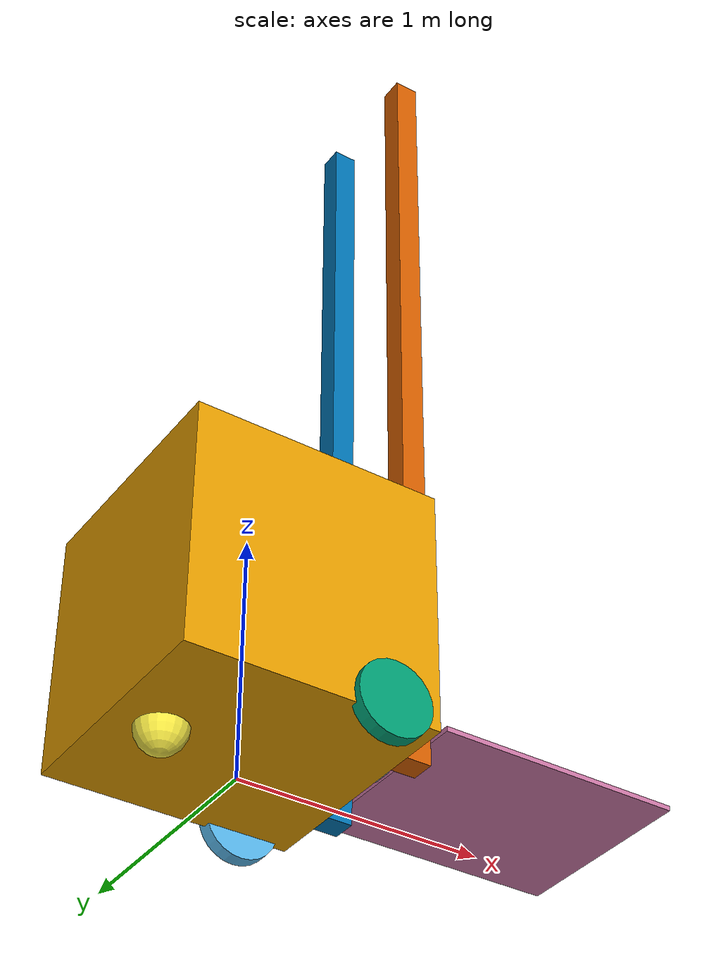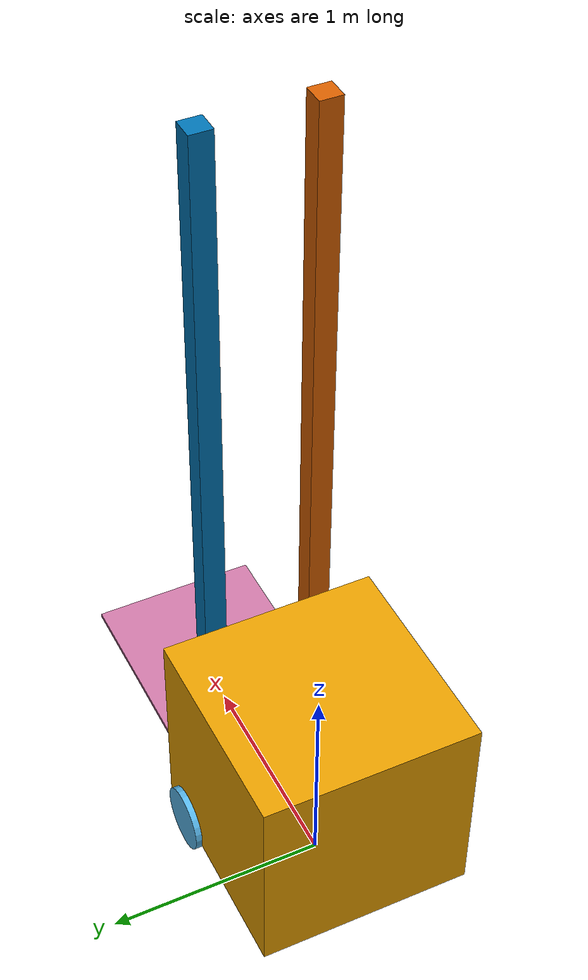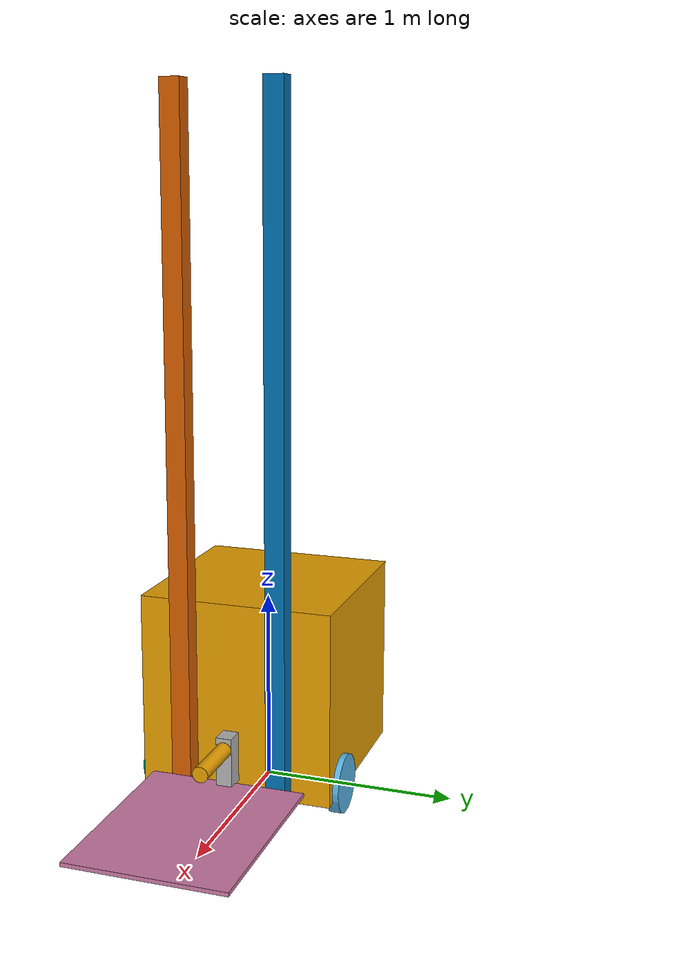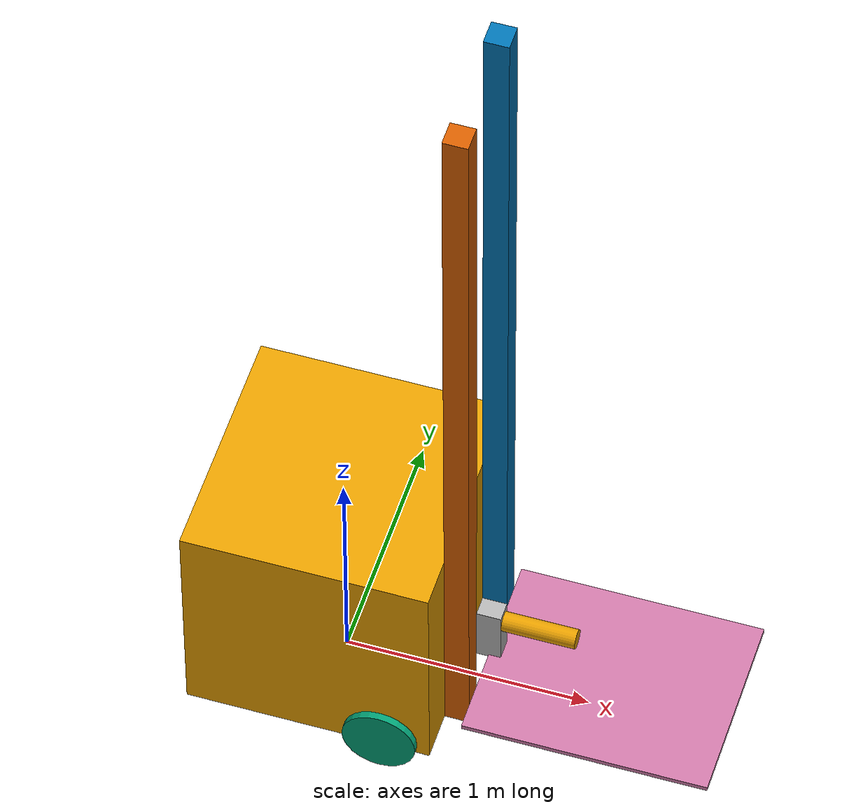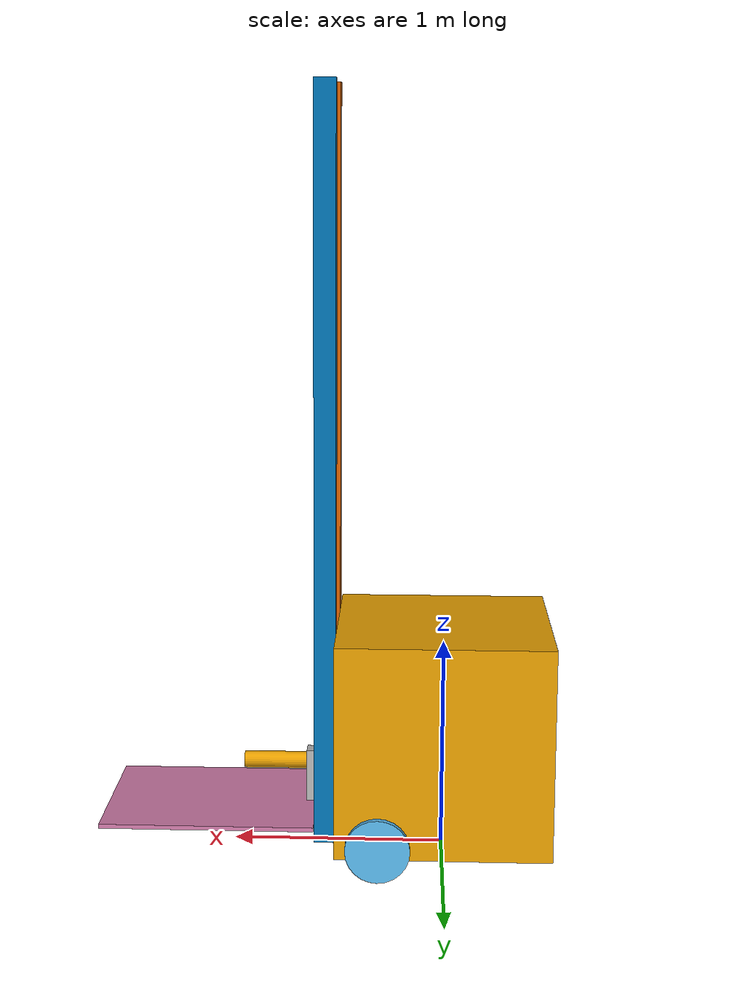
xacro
<?xml version="1.0"?>

<robot name="forklift"  xmlns:xacro="http://www.ros.org/wiki/xacro">
<xacro:include filename="$(find my_urdf)/urdf/joints_links.xacro"/>

    <m_box name="chassis" size="1 1 1" origin_rpy="0.0 0.0 0.0" origin_xyz="0.0 0.0 0.6"
        mass="30"
        ixx="5" ixy="0" ixz="0"
        iyy="5" iyz="0"
        izz="5"/>

   <m_cylinder name="r_wheel" length="0.06" radius="0.15" origin_rpy="1.57 0.0 0.0" origin_xyz="0.0 0.0 0.0"
             mass="0.5"
              ixx="0.00627" ixy="0" ixz="0"
              iyy="0.00627" iyz="0"
              izz="0.0625"/>

    <m_joint name="chassis_to_r_wheel" type="revolute" origin_xyz="0.3 0.5 0.15" origin_rpy="0.0 0.0 0.0"
         axis_xyz="0 1 0" parent="chassis" child="r_wheel" limit_e="1000.0" limit_v="2"
         limit_l="-3.14" limit_u="3.14"/>

    <transmission name="trans_chassis_to_r_wheel">
      <type>transmission_interface/SimpleTransmission</type>
      <joint name="chassis_to_r_wheel">
        <hardwareInterface>hardware_interface/VelocityJointInterface</hardwareInterface>
      </joint>
      <actuator name="motor_chassis_to_r_wheel">
        <hardwareInterface>hardware_interface/VelocityJointInterface</hardwareInterface>
        <mechanicalReduction>1</mechanicalReduction>
      </actuator>
    </transmission>

    <m_cylinder name="l_wheel" length="0.06" radius="0.15" origin_rpy="1.57 0.0 0.0" origin_xyz="0.0 0.0 0.0"
             mass="0.5"
              ixx="0.00627" ixy="0" ixz="0"
              iyy="0.00627" iyz="0"
              izz="0.0625"/>

     <m_joint name="chassis_to_l_wheel" type="revolute" origin_xyz="0.3 -0.5 0.15" origin_rpy="0.0 0.0 0.0"
         axis_xyz="0 1 0" parent="chassis" child="l_wheel" limit_e="1000.0" limit_v="2"
         limit_l="-3.14" limit_u="3.14"/>

    <transmission name="trans_chassis_to_l_wheel">
      <type>transmission_interface/SimpleTransmission</type>
      <joint name="chassis_to_l_wheel">
        <hardwareInterface>hardware_interface/VelocityJointInterface</hardwareInterface>
      </joint>
      <actuator name="motor_chassis_to_l_wheel">
        <hardwareInterface>hardware_interface/VelocityJointInterface</hardwareInterface>
        <mechanicalReduction>1</mechanicalReduction>
      </actuator>
    </transmission>

     <link name="caster">
        <inertial>
        <mass value="0.2" />
        <origin rpy="0.0 0.0 0.0" xyz="0.0 0.0 0.0" />
        <inertia ixx="0.001" ixy="0.0" ixz="0.0" iyy="0.001" iyz="0.0" izz="0.001" />
        </inertial>
        <collision>
        <origin rpy="0.0 0.0 0.0" xyz="0.0 0.0 0.0" />
        <geometry>
          <sphere radius="0.1" />
        </geometry>
      </collision>
        <visual>
            <geometry>
                <sphere radius="0.1"/>
            </geometry>
        </visual>
    </link>

   <f_joint name="chassis_to_caster" type="fixed" origin_xyz="-0.3 0.0 0.1" origin_rpy="0.0 0.0 0.0"
          parent="chassis" child="caster"/>

    <m_box name="r_rod" size="0.1 0.1 3.5" origin_rpy="0.0 0.0 0.0" origin_xyz="0.0 0.0 1.75"
        mass="2"
        ixx="2.04" ixy="0" ixz="0"
        iyy="0.0033" iyz="0"
        izz="2.04"/>

    <f_joint name="chassis_to_r_rod" type="fixed" origin_xyz="0.55 0.25 0.10" origin_rpy="0.0 0.0 0.0"
          parent="chassis" child="r_rod"/>

    <m_box name="l_rod" size="0.1 0.1 3.5" origin_rpy="0.0 0.0 0.0" origin_xyz="0.0 0.0 1.75"
        mass="2"
        ixx="2.04" ixy="0" ixz="0"
        iyy="0.0033" iyz="0"
        izz="2.04"/>

    <f_joint name="chassis_to_l_rod" type="fixed" origin_xyz="0.55 -0.25 0.10" origin_rpy="0.0 0.0 0.0"
          parent="chassis" child="l_rod"/>

    <m_box name="lift" size="1 0.8 0.02" origin_rpy="0.0 0.0 0.0" origin_xyz="0.5 0.0 0.0"
        mass="1"
        ixx="0.13" ixy="0" ixz="0"
        iyy="0.0533" iyz="0"
        izz="0.0833"/>

    <m_joint name="r_rod_to_lift" type="prismatic" origin_xyz="0.05 -0.25 0.10" origin_rpy="0.0 0.0 0.0"
         axis_xyz="0 0 1" parent="r_rod" child="lift" limit_e="1000.0" limit_v="2"
         limit_l="0" limit_u="3.0"/>

    <transmission name="trans_r_rod_to_lift">
      <type>transmission_interface/SimpleTransmission</type>
      <joint name="r_rod_to_lift">
        <hardwareInterface>hardware_interface/EffortJointInterface</hardwareInterface>
      </joint>
      <actuator name="motor_r_rod_to_lift">
        <hardwareInterface>hardware_interface/EffortJointInterface</hardwareInterface>
        <mechanicalReduction>1</mechanicalReduction>
      </actuator>
    </transmission>

    <m_box name="pull_mech_v" size="0.1 0.08 0.26" origin_rpy="0.0 0.0 0.0" origin_xyz="0.0 0.0 0.13"
        mass="0.5"
        ixx="0.13" ixy="0" ixz="0"
        iyy="0.0533" iyz="0"
        izz="0.0833"/>

    <m_joint name="lift_to_pull_mech_v" type="prismatic" origin_xyz="0.0 0.0 0.0" origin_rpy="0.0 0.0 0.0"
         axis_xyz="1 0 0" parent="lift" child="pull_mech_v" limit_e="1000.0" limit_v="2"
         limit_l="0" limit_u="0.8"/>

    <transmission name="trans_lift_to_pull_mech_v">
      <type>transmission_interface/SimpleTransmission</type>
      <joint name="lift_to_pull_mech_v">
        <hardwareInterface>hardware_interface/EffortJointInterface</hardwareInterface>
      </joint>
      <actuator name="motor_lift_to_pull_mech_v">
        <hardwareInterface>hardware_interface/EffortJointInterface</hardwareInterface>
        <mechanicalReduction>1</mechanicalReduction>
      </actuator>
    </transmission>

    <m_cylinder name="pull_mech_h" length="0.3" radius="0.04" origin_rpy="0.0 1.57 0.0" origin_xyz="0.2 0.0 0.0"
             mass="0.5"
              ixx="0.00627" ixy="0" ixz="0"
              iyy="0.00627" iyz="0"
              izz="0.00627"/>
    <f_joint name="pull_mech_v_to_pull_mech_h" type="fixed" origin_xyz="0.0 0.0 0.2" origin_rpy="0.0 0.0 0.0"
          parent="pull_mech_v" child="pull_mech_h"/>

    <gazebo>
    <plugin name="gazebo_ros_plugin" filename="libgazebo_ros_control.so">
    <robotNamespace>/mrm</robotNamespace>
    <robotSimType>gazebo_ros_control/DefaultRobotHWSim</robotSimType>
    <legacyModeNS>true</legacyModeNS>
    </plugin>
  </gazebo>

</robot>

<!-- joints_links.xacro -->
<robot xmlns:xacro="http://www.ros.org/wiki/xacro">

 <xacro:macro name="m_joint" params="name type axis_xyz origin_rpy origin_xyz parent child limit_e limit_l limit_u limit_v">
    <joint name="${name}" type="${type}">
      <axis xyz="${axis_xyz}" />
      <limit effort="${limit_e}" lower="${limit_l}" upper="${limit_u}" velocity="${limit_v}" />
      <origin rpy="${origin_rpy}" xyz="${origin_xyz}" />
      <parent link="${parent}" />
      <child link="${child}" />
    </joint>
    </xacro:macro>

  <xacro:macro name="f_joint" params="name type origin_rpy origin_xyz parent child ">
    <joint name="${name}" type="${type}">
        <origin xyz="${origin_xyz}" rpy="${origin_rpy}"/>
        <parent link="${parent}"/>
        <child link="${child}"/>
    </joint>
  </xacro:macro>

  <xacro:macro name="c_joint" params="name type origin_rpy origin_xyz parent child axis_xyz ">
    <joint name="${name}" type="${type}">
        <axis xyz="${axis_xyz}"/>
        <origin xyz="${origin_xyz}" rpy="${origin_rpy}"/>
        <parent link="${parent}"/>
        <child link="${child}"/>
    </joint>
  </xacro:macro>

  <xacro:macro name="m_box" params="name origin_xyz origin_rpy size mass ixx ixy ixz iyy iyz izz">
    <link name="${name}">
      <inertial>
        <mass value="${mass}" />
        <origin rpy="${origin_rpy}" xyz="${origin_xyz}" />
        <inertia ixx="${ixx}" ixy="${ixy}" ixz="${ixz}" iyy="${iyy}" iyz="${iyz}" izz="${izz}" />
      </inertial>
      <collision>
        <origin rpy="${origin_rpy}" xyz="${origin_xyz}" />
        <geometry>
          <box size="${size}" />
        </geometry>
      </collision>
      <visual>
        <origin rpy="${origin_rpy}" xyz="${origin_xyz}" />
        <geometry>
          <box size="${size}" />
        </geometry>
      </visual>
    </link>
  </xacro:macro>

<xacro:macro name="m_cylinder" params="name origin_xyz origin_rpy radius length mass ixx ixy ixz iyy iyz izz">
 <link name="${name}">
      <inertial>
        <mass value="${mass}" />
        <origin rpy="${origin_rpy}" xyz="${origin_xyz}" />
        <inertia ixx="${ixx}" ixy="${ixy}" ixz="${ixz}" iyy="${iyy}" iyz="${iyz}" izz="${izz}" />
      </inertial>
      <collision>
        <origin rpy="${origin_rpy}" xyz="${origin_xyz}" />
        <geometry>
          <cylinder radius="${radius}" length="${length}" />
        </geometry>
      </collision>
      <visual>
        <origin rpy="${origin_rpy}" xyz="${origin_xyz}" />
        <geometry>
          <cylinder radius="${radius}" length="${length}" />
        </geometry>
      </visual>
    </link>
 </xacro:macro>
</robot>
